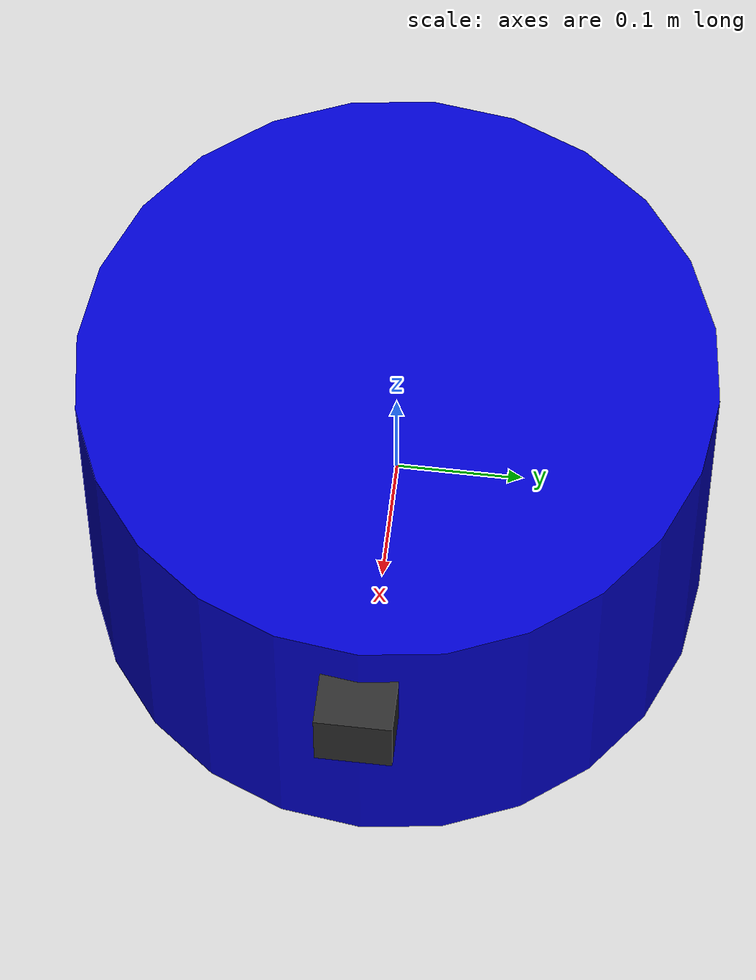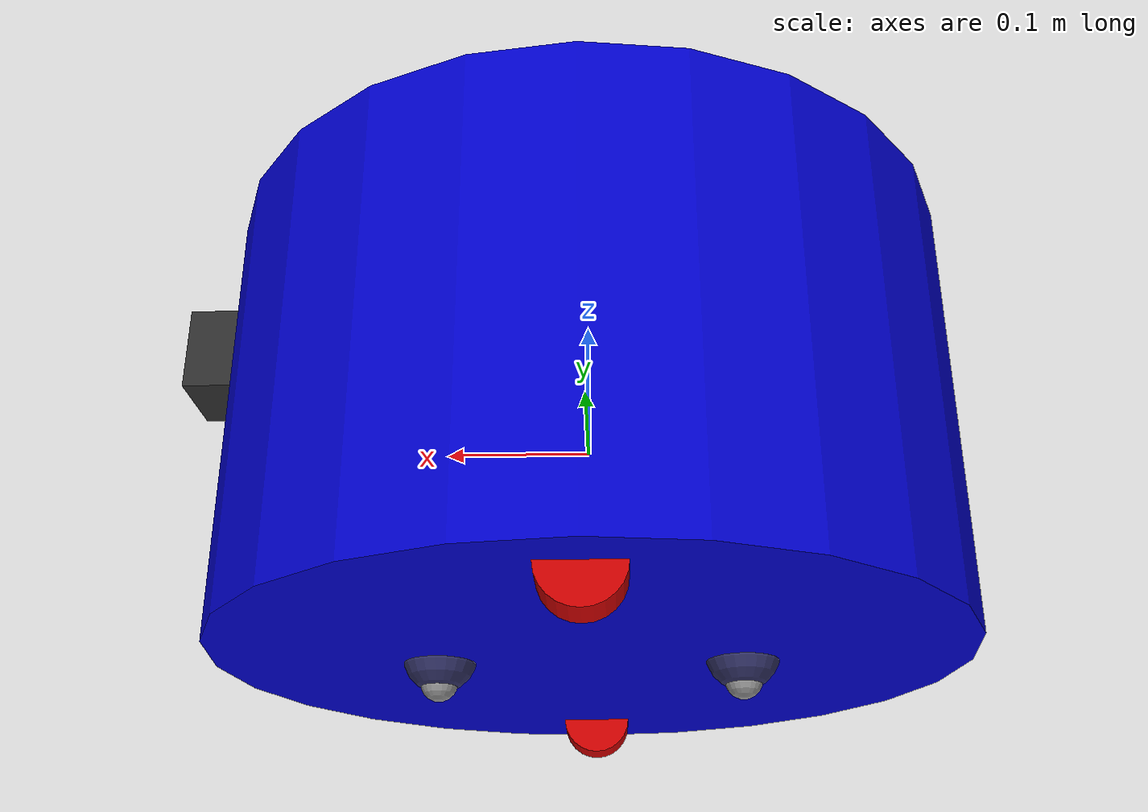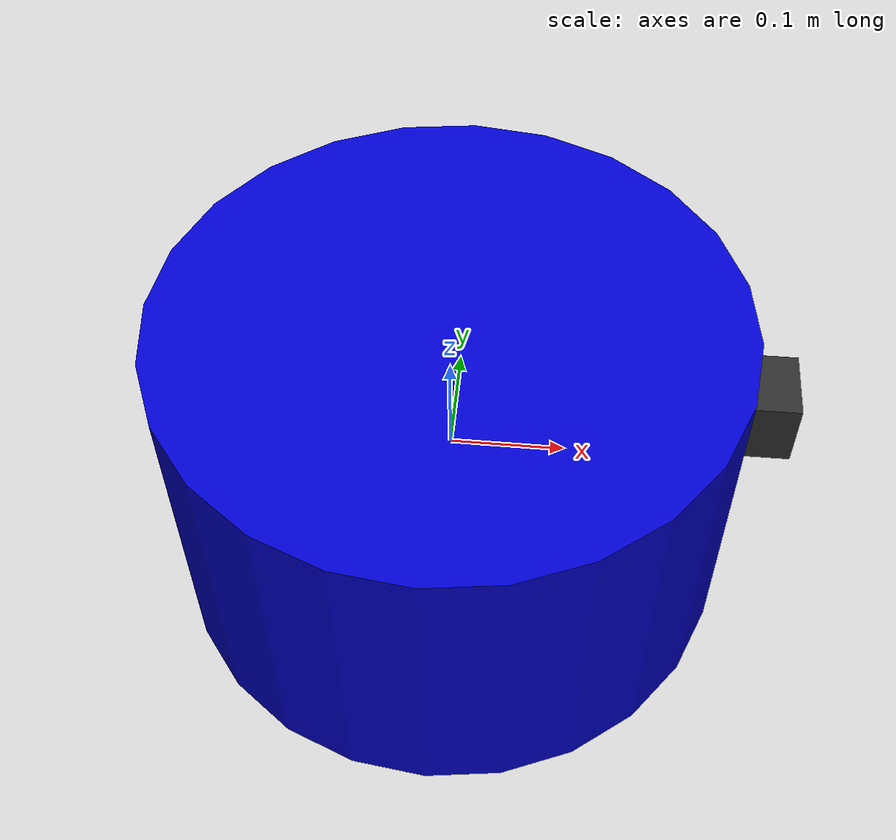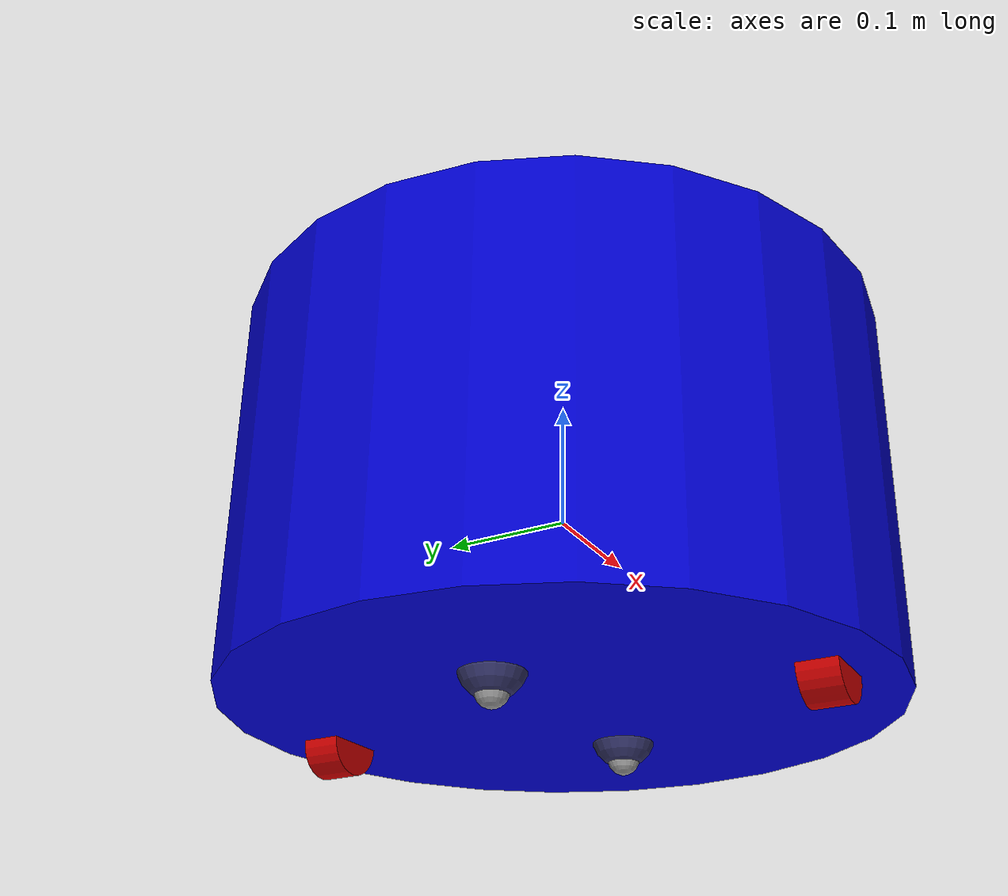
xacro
<?xml version="1.0" ?>

<robot name="RB1" xmlns:xacro="http://www.ros.org/wiki/xacro">

    <!-- Materials -->
    <material name="blue">
        <color rgba="0 0 ${204/255} 1"/>
    </material>

    <material name="dark_blue">
        <color rgba="${51/255} ${51/255} ${104/255} 1" />
    </material>

    <material name="red">
        <color rgba="${204/255} 0 0 1"/>
    </material>

    <material name="grey">
        <color rgba="${153/255} ${153/255} ${153/255} 1" />
    </material>

    <material name="dark_grey">
        <color rgba="${45/255} ${45/255} ${45/255} 1" />
    </material>

    <!-- Constants -->
    <xacro:property name="PI" value="3.1415926535897931"/>

    <!-- Macros -->
    <xacro:macro name="cylinder_inertia" params="m r h">
        <inertia
            ixx="${(m/12) * (3 * r*r + h*h)}" ixy = "0" ixz = "0"
            iyy="${(m/12) * (3 * r*r + h*h)}" iyz = "0"
            izz="${(m/2) * r*r}"
        />
    </xacro:macro>

    <xacro:macro name="sphere_interia" params="m r">
        <inertia
            ixx="${(2/5) * m * r*r}" ixy="0" ixz="0"
            iyy="${(2/5) * m * r*r}" iyz="0"
            izz="${(2/5) * m * r*r}"
        />
    </xacro:macro>

    <xacro:macro name="box_inertia" params="m x y z">
        <inertia
            ixx="${(m/12) * (x*x + z*z)}" ixy="0" ixz="0"
            iyy="${(m/12) * (y*y + x*x)}" iyz="0"
            izz="${(m/12) * (y*y + z*z)}"
        />
    </xacro:macro>

    <!-- Link - base -->
    <xacro:property name="base_r" value="0.25" />
    <xacro:property name="base_h" value="0.30" />
    <xacro:property name="base_m" value="17.74" />
    <link name="base_link">
        <inertial>
            <origin xyz="0 0 0" rpy="0 0 0" />
            <mass value="${base_m}" />
            <xacro:cylinder_inertia m="${base_m}" r="${base_r}" h="${base_h}" />
        </inertial>

        <collision>
            <geometry>
                <cylinder length="${base_h}" radius="${base_r}"/>
            </geometry>
        </collision>

        <visual>
            <geometry>
                <cylinder length="${base_h}" radius="${base_r}"/>
            </geometry>
            <material name="blue" />
        </visual>
    </link>

    <!-- Joint - base / base_footprint -->
    <joint name="base_to_base_footprint" type="fixed">
        <origin rpy="0 0 0" xyz="0 0 -${base_h / 2}" />
        <parent link="base_link" />
        <child link="base_footprint" />
    </joint>

    <!-- Link - base_footprint -->
    <link name="base_footprint" />

    <!-- Wheel properties -->
    <xacro:property name="base_to_wheel_offset_y" value="0.2" />

    <xacro:property name="wheel_r" value="${0.05 / 2}" />
    <xacro:property name="wheel_h" value="0.03" />
    <xacro:property name="wheel_m" value="2" />

    <!-- Joint - base / left wheel -->
    <joint name="base_to_left_wheel" type="continuous">
        <origin rpy="0 0 0" xyz="0 ${base_to_wheel_offset_y} -${base_h / 2}" />
        <parent link="base_link" />
        <child link="left_wheel" />
        <axis rpy="0 0 0" xyz="0 1 0" />
        <limit effort="10000" velocity="1000" />
        <joint_properties damping="1.0" friction="1.0" />
    </joint>

    <!-- Link - left wheel -->
    <link name="left_wheel">
        <inertial>
            <mass value="${wheel_m}" />
            <origin xyz="0 0 0" rpy="0 0 0" />
            <xacro:cylinder_inertia m="${wheel_m}" r="${wheel_r}" h="${wheel_h}" />
        </inertial>

        <collision>
            <origin xyz="0 0 0" rpy="${PI/2} 0 0" />
            <geometry>
                <cylinder length="${wheel_h}" radius="${wheel_r}"/>
            </geometry>
        </collision>

        <visual>
            <origin xyz="0 0 0" rpy="${PI/2} 0 0" />
            <geometry>
                <cylinder length="${wheel_h}" radius="${wheel_r}"/>
            </geometry>
            <material name="red" />
        </visual>
    </link>

    <!-- Joint - base / right wheel -->
    <joint name="base_to_right_wheel" type="continuous">
        <origin rpy="0 0 0" xyz="0 -${base_to_wheel_offset_y} -${base_h / 2}" />
        <parent link="base_link" />
        <child link="right_wheel" />
        <axis rpy="0 0 0" xyz="0 1 0" />
        <limit effort="10000" velocity="1000" />
        <joint_properties damping="1.0" friction="1.0" />
    </joint>

    <!-- Link - right wheel -->
    <link name="right_wheel">
        <inertial>
            <mass value="${wheel_m}" />
            <origin xyz="0 0 0" rpy="0 0 0" />
            <xacro:cylinder_inertia m="${wheel_m}" r="${wheel_r}" h="${wheel_h}" />
        </inertial>

        <collision>
            <origin xyz="0 0 0" rpy="${PI/2} 0 0" />
            <geometry>
                <cylinder length="${wheel_h}" radius="${wheel_r}"/>
            </geometry>
        </collision>

        <visual>
            <origin xyz="0 0 0" rpy="${PI/2} 0 0" />
            <geometry>
                <cylinder length="${wheel_h}" radius="${wheel_r}"/>
            </geometry>
            <material name="red" />
        </visual>
    </link>

    <!-- Caster properties -->
    <xacro:property name="caster_r" value="${0.025 / 2}" />
    <xacro:property name="caster_m" value="1.5" />

    <!-- Joint - base / front caster -->
    <joint name="base_to_front_caster" type="fixed">
        <origin rpy="0 0 0" xyz="0.1 0 -${base_h / 2}" />
        <parent link="base_link" />
        <child link="front_caster" />
        <axis rpy="0 0 0" xyz="0 1 0" />
        <limit effort="10000" velocity="1000" />
        <joint_properties damping="1.0" friction="0" />
    </joint>

    <!-- Link - front caster -->
    <link name="front_caster">
        <inertial>
            <mass value="${caster_m}" />
            <origin xyz="0 0 -${caster_r}" rpy="0 0 0" />
            <xacro:sphere_interia m="${caster_m}" r="${caster_r}" />
        </inertial>

        <!-- Caster wheel support -->
        <collision>
            <origin rpy="0 0 0" xyz="0 0 ${caster_r/2}" />
            <geometry>
                <sphere radius="${caster_r * 2}" />
            </geometry>
        </collision>
        <visual>
            <origin rpy="0 0 0" xyz="0 0 ${caster_r/2}" />
            <geometry>
                <sphere radius="${caster_r * 2}" />
            </geometry>
            <material name="dark_blue" />
        </visual>

        <!-- Caster wheel -->
        <collision>
            <origin rpy="0 0 0" xyz="0 0 -${caster_r}" />
            <geometry>
                <sphere radius="${caster_r}" />
            </geometry>
        </collision>
        <visual>
            <origin rpy="0 0 0" xyz="0 0 -${caster_r}" />
            <geometry>
                <sphere radius="${caster_r}" />
            </geometry>
            <material name="grey" />
        </visual>
    </link>

    <!-- Joint - base / back caster -->
    <joint name="base_to_back_caster" type="fixed">
        <origin rpy="0 0 0" xyz="-0.1 0 -${base_h / 2}" />
        <parent link="base_link" />
        <child link="back_caster" />
        <axis rpy="0 0 0" xyz="0 1 0" />
        <limit effort="10000" velocity="1000" />
        <joint_properties damping="1.0" friction="0" />
    </joint>

    <!-- Link - back caster -->
    <link name="back_caster">
        <inertial>
            <mass value="${caster_m}" />
            <origin xyz="0 0 -${caster_r}" rpy="0 0 0" />
            <xacro:sphere_interia m="${caster_m}" r="${caster_r}" />
        </inertial>

        <!-- Caster wheel support -->
        <collision>
            <origin rpy="0 0 0" xyz="0 0 ${caster_r/2}" />
            <geometry>
                <sphere radius="${caster_r * 2}" />
            </geometry>
        </collision>
        <visual>
            <origin rpy="0 0 0" xyz="0 0 ${caster_r/2}" />
            <geometry>
                <sphere radius="${caster_r * 2}" />
            </geometry>
            <material name="dark_blue" />
        </visual>

        <!-- Caster wheel -->
        <collision>
            <origin rpy="0 0 0" xyz="0 0 -${caster_r}" />
            <geometry>
                <sphere radius="${caster_r}" />
            </geometry>
        </collision>
        <visual>
            <origin rpy="0 0 0" xyz="0 0 -${caster_r}" />
            <geometry>
                <sphere radius="${caster_r}" />
            </geometry>
            <material name="grey" />
        </visual>
    </link>

    <!-- Laser properties -->
    <xacro:property name="laser_x" value="${75.0 / 1000}" />
    <xacro:property name="laser_y" value="${60.0 / 1000}" />
    <xacro:property name="laser_z" value="${60.0 / 1000}" />
    <xacro:property name="laser_m" value="${260.0 / 1000}" />

    <!-- Joint - base / front laser -->
    <joint name="base_to_front_laser" type="fixed">
        <!-- rotate the laser by 180 degrees -->
        <origin rpy="${PI} 0 0" xyz="${base_r} 0 ${base_h / 4}" />
        <parent link="base_link" />
        <child link="front_laser" />
    </joint>

    <!-- Link - front laser -->
    <!-- Modeled after a Hokuyo UBG-04LX-F01 -->
    <link name="front_laser">
        <inertial>
            <mass value="${laser_m}" />
            <origin xyz="0 0 0" rpy="0 0 0" />
            <xacro:box_inertia m="${laser_m}" x="${laser_x}" y="${laser_y}" z="${laser_z}" />
        </inertial>

        <collision>
            <origin xyz="0 0 0" rpy="0 0 0" />
            <geometry>
                <box size="${laser_x} ${laser_y}  ${laser_z}" />
            </geometry>
        </collision>

        <visual>
            <origin xyz="0 0 0" rpy="0 0 0" />
            <geometry>
                <box size="${laser_x} ${laser_y}  ${laser_z}" />
            </geometry>
            <material name="dark_grey" />
        </visual>
    </link>

    <!-- Gazebo tags -->
    <gazebo reference="base_link">
        <material>Gazebo/Black</material>
    </gazebo>

    <gazebo reference="left_wheel">
        <mu1>1</mu1>
        <mu2>1</mu2>
    </gazebo>
    <gazebo reference="right_wheel">
        <mu1>1</mu1>
        <mu2>1</mu2>
    </gazebo>

    <gazebo reference="front_caster">
        <mu1>0</mu1>
        <mu2>0</mu2>
    </gazebo>
    <gazebo reference="back_caster">
        <mu1>0</mu1>
        <mu2>0</mu2>
    </gazebo>

    <gazebo reference="base_to_front_caster">
        <preserveFixedJoint>true</preserveFixedJoint>
    </gazebo>
    <gazebo reference="base_to_back_caster">
        <preserveFixedJoint>true</preserveFixedJoint>
    </gazebo>

    <gazebo reference="base_to_front_laser">
        <preserveFixedJoint>true</preserveFixedJoint>
    </gazebo>

    <gazebo>
        <plugin filename="libgazebo_ros_diff_drive.so" name="differential_drive_controller">
            <alwaysOn>true</alwaysOn>
            <updateRate>20</updateRate>
            <leftJoint>base_to_left_wheel</leftJoint>
            <rightJoint>base_to_right_wheel</rightJoint>
            <wheelSeparation>${base_to_wheel_offset_y * 2}</wheelSeparation>
            <wheelDiameter>${wheel_r * 2}</wheelDiameter>
            <torque>10</torque>
            <commandTopic>cmd_vel</commandTopic>
            <odometryTopic>odom</odometryTopic>
            <odometryFrame>odom</odometryFrame>
            <robotBaseFrame>base_link</robotBaseFrame>
        </plugin>
    </gazebo>

    <gazebo reference="front_laser">
        <sensor type="ray" name="head_hokuyo_sensor">
            <pose>0 0 0 0 0 0</pose>
            <visualize>false</visualize>
            <update_rate>20</update_rate>
            <ray>
                <scan>
                    <horizontal>
                        <samples>720</samples>
                        <resolution>1</resolution>
                        <min_angle>-1.570796</min_angle>
                        <max_angle>1.570796</max_angle>
                    </horizontal>
                </scan>
                <range>
                    <min>${laser_x + 0.05}</min>
                    <max>10.0</max>
                    <resolution>0.01</resolution>
                </range>
                <noise>
                    <type>gaussian</type>
                    <mean>0.0</mean>
                    <stddev>0.01</stddev>
                </noise>
            </ray>
            <plugin name="gazebo_ros_head_hokuyo_controller" filename="libgazebo_ros_laser.so">
                <topicName>/scan</topicName>
                <frameName>sensor_laser</frameName>
            </plugin>
        </sensor>
    </gazebo>

</robot>
